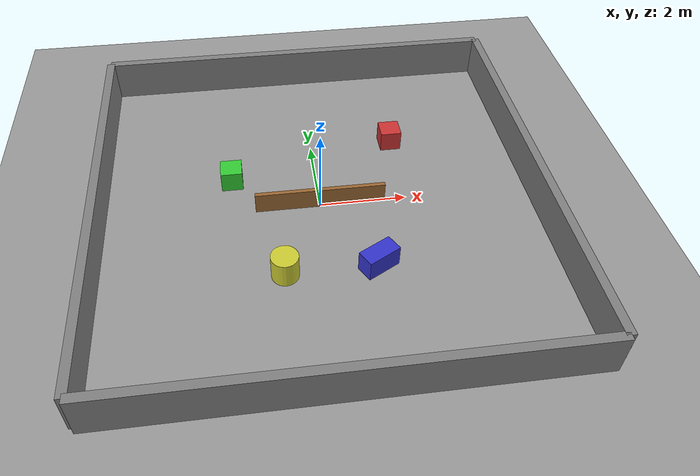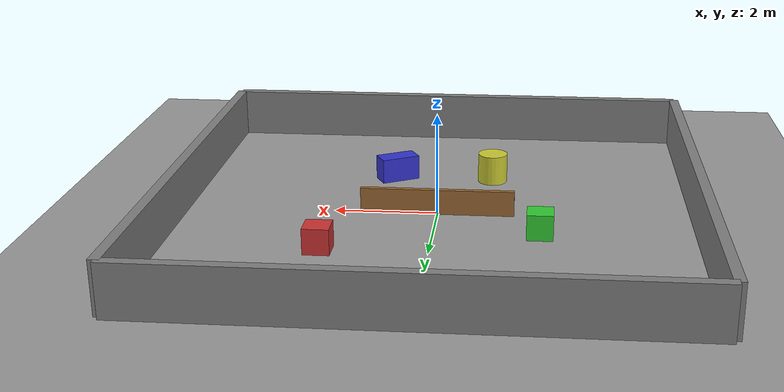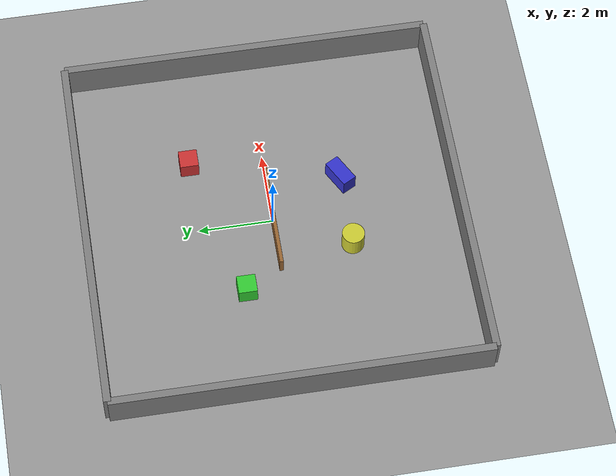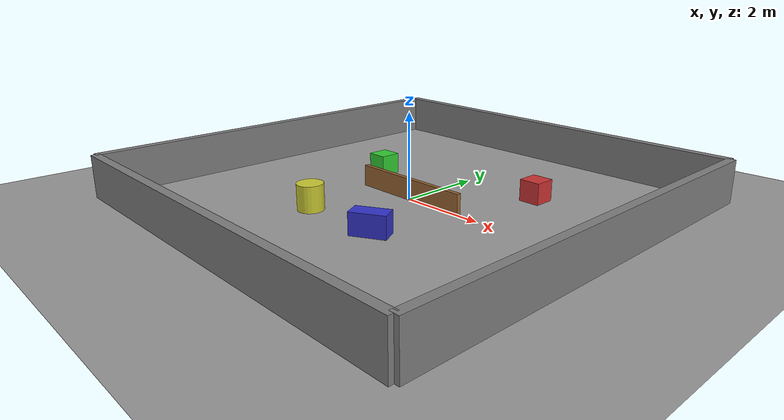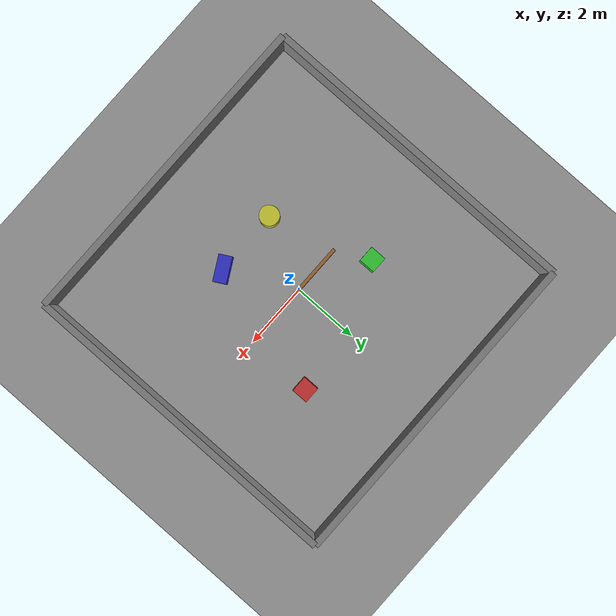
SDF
<?xml version="1.0" ?>
<sdf version="1.8">
  <world name="warehouse">

    <physics name="1ms" type="ignored">
      <max_step_size>0.001</max_step_size>
      <real_time_factor>1.0</real_time_factor>
    </physics>

    <plugin filename="libignition-gazebo-physics-system.so"
            name="ignition::gazebo::systems::Physics"/>
    <plugin filename="libignition-gazebo-user-commands-system.so"
            name="ignition::gazebo::systems::UserCommands"/>
    <plugin filename="libignition-gazebo-scene-broadcaster-system.so"
            name="ignition::gazebo::systems::SceneBroadcaster"/>

    <light type="directional" name="sun">
      <cast_shadows>true</cast_shadows>
      <pose>0 0 10 0 0 0</pose>
      <diffuse>0.8 0.8 0.8 1</diffuse>
      <specular>0.2 0.2 0.2 1</specular>
      <direction>-0.5 0.1 -0.9</direction>
    </light>

    <!-- Ground -->
    <model name="ground_plane">
      <static>true</static>
      <link name="link">
        <collision name="collision">
          <geometry>
            <plane>
              <normal>0 0 1</normal>
              <size>50 50</size>
            </plane>
          </geometry>
        </collision>
        <visual name="visual">
          <geometry>
            <plane>
              <normal>0 0 1</normal>
              <size>50 50</size>
            </plane>
          </geometry>
          <material>
            <ambient>0.6 0.6 0.6 1</ambient>
            <diffuse>0.6 0.6 0.6 1</diffuse>
          </material>
        </visual>
      </link>
    </model>

    <!-- Walls -->
    <model name="wall_north">
      <static>true</static>
      <pose>0 5 0.5 0 0 0</pose>
      <link name="link">
        <collision name="collision">
          <geometry>
            <box><size>10 0.2 1</size></box>
          </geometry>
        </collision>
        <visual name="visual">
          <geometry>
            <box><size>10 0.2 1</size></box>
          </geometry>
          <material>
            <ambient>0.5 0.5 0.5 1</ambient>
          </material>
        </visual>
      </link>
    </model>

    <model name="wall_south">
      <static>true</static>
      <pose>0 -5 0.5 0 0 0</pose>
      <link name="link">
        <collision name="collision">
          <geometry>
            <box><size>10 0.2 1</size></box>
          </geometry>
        </collision>
        <visual name="visual">
          <geometry>
            <box><size>10 0.2 1</size></box>
          </geometry>
          <material>
            <ambient>0.5 0.5 0.5 1</ambient>
          </material>
        </visual>
      </link>
    </model>

    <model name="wall_east">
      <static>true</static>
      <pose>5 0 0.5 0 0 1.5708</pose>
      <link name="link">
        <collision name="collision">
          <geometry>
            <box><size>10 0.2 1</size></box>
          </geometry>
        </collision>
        <visual name="visual">
          <geometry>
            <box><size>10 0.2 1</size></box>
          </geometry>
          <material>
            <ambient>0.5 0.5 0.5 1</ambient>
          </material>
        </visual>
      </link>
    </model>

    <model name="wall_west">
      <static>true</static>
      <pose>-5 0 0.5 0 0 1.5708</pose>
      <link name="link">
        <collision name="collision">
          <geometry>
            <box><size>10 0.2 1</size></box>
          </geometry>
        </collision>
        <visual name="visual">
          <geometry>
            <box><size>10 0.2 1</size></box>
          </geometry>
          <material>
            <ambient>0.5 0.5 0.5 1</ambient>
          </material>
        </visual>
      </link>
    </model>

    <!-- Obstacles -->
    <model name="box1">
      <static>true</static>
      <pose>2 2 0.25 0 0 0</pose>
      <link name="link">
        <collision name="collision">
          <geometry>
            <box><size>0.5 0.5 0.5</size></box>
          </geometry>
        </collision>
        <visual name="visual">
          <geometry>
            <box><size>0.5 0.5 0.5</size></box>
          </geometry>
          <material>
            <ambient>0.8 0.2 0.2 1</ambient>
          </material>
        </visual>
      </link>
    </model>

    <model name="box2">
      <static>true</static>
      <pose>-2 1 0.25 0 0 0</pose>
      <link name="link">
        <collision name="collision">
          <geometry>
            <box><size>0.5 0.5 0.5</size></box>
          </geometry>
        </collision>
        <visual name="visual">
          <geometry>
            <box><size>0.5 0.5 0.5</size></box>
          </geometry>
          <material>
            <ambient>0.2 0.8 0.2 1</ambient>
          </material>
        </visual>
      </link>
    </model>

    <model name="box3">
      <static>true</static>
      <pose>1 -2 0.25 0 0 0.5</pose>
      <link name="link">
        <collision name="collision">
          <geometry>
            <box><size>0.8 0.4 0.5</size></box>
          </geometry>
        </collision>
        <visual name="visual">
          <geometry>
            <box><size>0.8 0.4 0.5</size></box>
          </geometry>
          <material>
            <ambient>0.2 0.2 0.8 1</ambient>
          </material>
        </visual>
      </link>
    </model>

    <model name="cylinder1">
      <static>true</static>
      <pose>-1 -2 0.3 0 0 0</pose>
      <link name="link">
        <collision name="collision">
          <geometry>
            <cylinder>
              <radius>0.3</radius>
              <length>0.6</length>
            </cylinder>
          </geometry>
        </collision>
        <visual name="visual">
          <geometry>
            <cylinder>
              <radius>0.3</radius>
              <length>0.6</length>
            </cylinder>
          </geometry>
          <material>
            <ambient>0.8 0.8 0.2 1</ambient>
          </material>
        </visual>
      </link>
    </model>

    <model name="long_wall">
      <static>true</static>
      <pose>0 0 0.25 0 0 0</pose>
      <link name="link">
        <collision name="collision">
          <geometry>
            <box><size>3 0.1 0.5</size></box>
          </geometry>
        </collision>
        <visual name="visual">
          <geometry>
            <box><size>3 0.1 0.5</size></box>
          </geometry>
          <material>
            <ambient>0.6 0.4 0.2 1</ambient>
          </material>
        </visual>
      </link>
    </model>

  </world>
</sdf>
